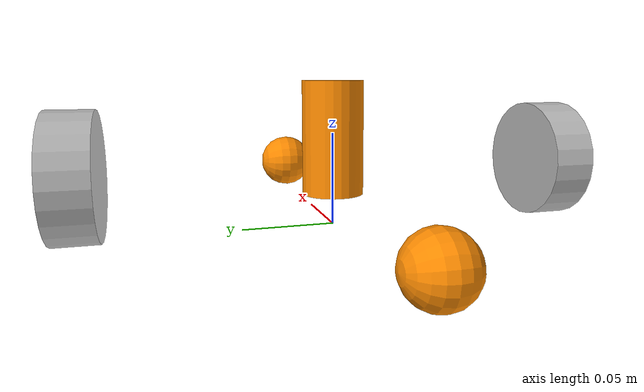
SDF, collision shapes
<?xml version='1.0'?>
<sdf version='1.6'>
  <model name='robot'>
    <link name='base'>
      <inertial>
        <pose frame=''>0.001453 -0.000453 0.029787 0 -0 0</pose>
        <inertia>
          <ixx>0.05864</ixx>
          <ixy>0.000124</ixy>
          <ixz>0.000615</ixz>
          <iyy>0.058786</iyy>
          <iyz>1.4e-05</iyz>
          <izz>1.53244</izz>
        </inertia>
        <mass>2.234</mass>
      </inertial>
      <sensor name='left_cliff_sensor' type='ray'>
        <pose frame=''>0.07 0.14 0.027 0 1.57079 0</pose>
        <ray>
          <scan>
            <horizontal>
              <samples>1</samples>
              <resolution>1</resolution>
              <min_angle>0</min_angle>
              <max_angle>0</max_angle>
            </horizontal>
            <vertical>
              <samples>1</samples>
              <min_angle>0</min_angle>
              <max_angle>0</max_angle>
            </vertical>
          </scan>
          <range>
            <min>0.01</min>
            <max>0.04</max>
            <resolution>0.1</resolution>
          </range>
        </ray>
      </sensor>
      <sensor name='leftfront_cliff_sensor' type='ray'>
        <pose frame=''>0.15 0.04 0.027 0 1.57079 0</pose>
        <ray>
          <scan>
            <horizontal>
              <samples>1</samples>
              <resolution>1</resolution>
              <min_angle>0</min_angle>
              <max_angle>0</max_angle>
            </horizontal>
            <vertical>
              <samples>1</samples>
              <min_angle>0</min_angle>
              <max_angle>0</max_angle>
            </vertical>
          </scan>
          <range>
            <min>0.01</min>
            <max>0.04</max>
            <resolution>0.1</resolution>
          </range>
        </ray>
      </sensor>
      <sensor name='right_cliff_sensor' type='ray'>
        <pose frame=''>0.07 -0.14 0.027 0 1.57079 0</pose>
        <ray>
          <scan>
            <horizontal>
              <samples>1</samples>
              <resolution>1</resolution>
              <min_angle>0</min_angle>
              <max_angle>0</max_angle>
            </horizontal>
            <vertical>
              <samples>1</samples>
              <min_angle>0</min_angle>
              <max_angle>0</max_angle>
            </vertical>
          </scan>
          <range>
            <min>0.01</min>
            <max>0.04</max>
            <resolution>0.1</resolution>
          </range>
        </ray>
      </sensor>
      <sensor name='rightfront_cliff_sensor' type='ray'>
        <pose frame=''>0.15 -0.04 0.027 0 1.57079 0</pose>
        <ray>
          <scan>
            <horizontal>
              <samples>1</samples>
              <resolution>1</resolution>
              <min_angle>0</min_angle>
              <max_angle>0</max_angle>
            </horizontal>
            <vertical>
              <samples>1</samples>
              <min_angle>0</min_angle>
              <max_angle>0</max_angle>
            </vertical>
          </scan>
          <range>
            <min>0.01</min>
            <max>0.04</max>
            <resolution>0.1</resolution>
          </range>
        </ray>
      </sensor>
      <sensor name='wall_sensor' type='ray'>
        <pose frame=''>0.09 -0.12 0.059 0 0 -1</pose>
        <ray>
          <scan>
            <horizontal>
              <samples>1</samples>
              <resolution>1</resolution>
              <min_angle>0</min_angle>
              <max_angle>0</max_angle>
            </horizontal>
            <vertical>
              <samples>1</samples>
              <min_angle>0</min_angle>
              <max_angle>0</max_angle>
            </vertical>
          </scan>
          <range>
            <min>0.016</min>
            <max>0.04</max>
            <resolution>0.1</resolution>
          </range>
        </ray>
      </sensor>
      <self_collide>0</self_collide>
      <enable_wind>0</enable_wind>
      <kinematic>0</kinematic>
      <pose frame=''>0 0 0 0 -0 0</pose>
      <visual name='base_visual'>
        <pose frame=''>0 0 0.0478 0 -0 0</pose>
        <geometry>
          <mesh>
            <uri>model://create/meshes/create_body.dae</uri>
          </mesh>
        </geometry>
        <material>
          <shader type='pixel'/>
          <ambient>1 0.55 0 1</ambient>
          <diffuse>1 0.55 0 1</diffuse>
          <specular>0.1 0.1 0.1 1</specular>
          <emissive>0 0 0 0</emissive>
        </material>
        <transparency>0</transparency>
        <cast_shadows>1</cast_shadows>
      </visual>
      <visual name='front_wheel_visual'>
        <pose frame=''>0.13 0 0.017 4.8e-05 1.5707 1.57075</pose>
        <geometry>
          <sphere>
            <radius>0.009</radius>
          </sphere>
        </geometry>
        <material>
          <shader type='pixel'/>
          <ambient>1 0.55 0 1</ambient>
          <diffuse>1 0.55 0 1</diffuse>
          <specular>0.1 0.1 0.1 1</specular>
          <emissive>0 0 0 0</emissive>
        </material>
        <transparency>0</transparency>
        <cast_shadows>1</cast_shadows>
      </visual>
      <visual name='rear_wheel_visual'>
        <pose frame=''>-0.13 0 0.017 4.8e-05 1.5707 1.57075</pose>
        <geometry>
          <sphere>
            <radius>0.0075</radius>
          </sphere>
        </geometry>
        <material>
          <shader type='pixel'/>
          <ambient>1 0.55 0 1</ambient>
          <diffuse>1 0.55 0 1</diffuse>
          <specular>0.1 0.1 0.1 1</specular>
          <emissive>0 0 0 0</emissive>
        </material>
        <transparency>0</transparency>
        <cast_shadows>1</cast_shadows>
      </visual>
      <collision name='base_collision'>
        <laser_retro>0</laser_retro>
        <max_contacts>10</max_contacts>
        <pose frame=''>0 0 0.0478 0 -0 0</pose>
        <geometry>
          <cylinder>
            <radius>0.016495</radius>
            <length>0.061163</length>
          </cylinder>
        </geometry>
        <surface>
          <friction>
            <ode>
              <mu>1</mu>
              <mu2>1</mu2>
              <fdir1>0 0 0</fdir1>
              <slip1>0</slip1>
              <slip2>0</slip2>
            </ode>
            <torsional>
              <coefficient>1</coefficient>
              <patch_radius>0</patch_radius>
              <surface_radius>0</surface_radius>
              <use_patch_radius>1</use_patch_radius>
              <ode>
                <slip>0</slip>
              </ode>
            </torsional>
          </friction>
          <bounce>
            <restitution_coefficient>0</restitution_coefficient>
            <threshold>1e+06</threshold>
          </bounce>
          <contact>
            <collide_without_contact>0</collide_without_contact>
            <collide_without_contact_bitmask>1</collide_without_contact_bitmask>
            <collide_bitmask>1</collide_bitmask>
            <ode>
              <soft_cfm>0</soft_cfm>
              <soft_erp>0.2</soft_erp>
              <kp>1e+13</kp>
              <kd>1</kd>
              <max_vel>0.01</max_vel>
              <min_depth>0</min_depth>
            </ode>
            <bullet>
              <split_impulse>1</split_impulse>
              <split_impulse_penetration_threshold>-0.01</split_impulse_penetration_threshold>
              <soft_cfm>0</soft_cfm>
              <soft_erp>0.2</soft_erp>
              <kp>1e+13</kp>
              <kd>1</kd>
            </bullet>
          </contact>
        </surface>
      </collision>
      <collision name='front_wheel_collision'>
        <laser_retro>0</laser_retro>
        <max_contacts>10</max_contacts>
        <pose frame=''>0.13 0 0.017 -0 1.5707 1.5707</pose>
        <geometry>
          <sphere>
            <radius>0.018</radius>
          </sphere>
        </geometry>
        <surface>
          <friction>
            <ode>
              <mu>0</mu>
              <mu2>0</mu2>
              <fdir1>0 0 0</fdir1>
              <slip1>0</slip1>
              <slip2>0</slip2>
            </ode>
            <torsional>
              <coefficient>1</coefficient>
              <patch_radius>0</patch_radius>
              <surface_radius>0</surface_radius>
              <use_patch_radius>1</use_patch_radius>
              <ode>
                <slip>0</slip>
              </ode>
            </torsional>
          </friction>
          <bounce>
            <restitution_coefficient>0</restitution_coefficient>
            <threshold>1e+06</threshold>
          </bounce>
          <contact>
            <collide_without_contact>0</collide_without_contact>
            <collide_without_contact_bitmask>1</collide_without_contact_bitmask>
            <collide_bitmask>1</collide_bitmask>
            <ode>
              <soft_cfm>0</soft_cfm>
              <soft_erp>0.2</soft_erp>
              <kp>1e+13</kp>
              <kd>1</kd>
              <max_vel>0.01</max_vel>
              <min_depth>0</min_depth>
            </ode>
            <bullet>
              <split_impulse>1</split_impulse>
              <split_impulse_penetration_threshold>-0.01</split_impulse_penetration_threshold>
              <soft_cfm>0</soft_cfm>
              <soft_erp>0.2</soft_erp>
              <kp>1e+13</kp>
              <kd>1</kd>
            </bullet>
          </contact>
        </surface>
      </collision>
      <collision name='rear_wheel_collision'>
        <laser_retro>0</laser_retro>
        <max_contacts>10</max_contacts>
        <pose frame=''>-0.13 0 0.017 -0 1.5707 1.5707</pose>
        <geometry>
          <sphere>
            <radius>0.015</radius>
          </sphere>
        </geometry>
        <surface>
          <friction>
            <ode>
              <mu>0</mu>
              <mu2>0</mu2>
              <fdir1>0 0 0</fdir1>
              <slip1>0</slip1>
              <slip2>0</slip2>
            </ode>
            <torsional>
              <coefficient>1</coefficient>
              <patch_radius>0</patch_radius>
              <surface_radius>0</surface_radius>
              <use_patch_radius>1</use_patch_radius>
              <ode>
                <slip>0</slip>
              </ode>
            </torsional>
          </friction>
          <bounce>
            <restitution_coefficient>0</restitution_coefficient>
            <threshold>1e+06</threshold>
          </bounce>
          <contact>
            <collide_without_contact>0</collide_without_contact>
            <collide_without_contact_bitmask>1</collide_without_contact_bitmask>
            <collide_bitmask>1</collide_bitmask>
            <ode>
              <soft_cfm>0</soft_cfm>
              <soft_erp>0.2</soft_erp>
              <kp>1e+13</kp>
              <kd>1</kd>
              <max_vel>0.01</max_vel>
              <min_depth>0</min_depth>
            </ode>
            <bullet>
              <split_impulse>1</split_impulse>
              <split_impulse_penetration_threshold>-0.01</split_impulse_penetration_threshold>
              <soft_cfm>0</soft_cfm>
              <soft_erp>0.2</soft_erp>
              <kp>1e+13</kp>
              <kd>1</kd>
            </bullet>
          </contact>
        </surface>
      </collision>
    </link>
    <link name='left_wheel'>
      <pose frame=''>-0 0.13 0.032 0 -0 0</pose>
      <inertial>
        <inertia>
          <ixx>0.001</ixx>
          <ixy>0</ixy>
          <ixz>0</ixz>
          <iyy>0.001</iyy>
          <iyz>0</iyz>
          <izz>0.001</izz>
        </inertia>
        <mass>0.01</mass>
        <pose frame=''>0 0 0 0 -0 0</pose>
      </inertial>
      <self_collide>0</self_collide>
      <enable_wind>0</enable_wind>
      <kinematic>0</kinematic>
      <visual name='visual'>
        <pose frame=''>0 0 0 4.8e-05 1.5707 1.57075</pose>
        <geometry>
          <cylinder>
            <radius>0.033</radius>
            <length>0.023</length>
          </cylinder>
        </geometry>
        <material>
          <shader type='pixel'/>
        </material>
        <transparency>0</transparency>
        <cast_shadows>1</cast_shadows>
      </visual>
      <collision name='collision'>
        <laser_retro>0</laser_retro>
        <max_contacts>10</max_contacts>
        <pose frame=''>0 0 0 -0 1.5707 1.5707</pose>
        <geometry>
          <cylinder>
            <radius>0.033</radius>
            <length>0.023</length>
          </cylinder>
        </geometry>
        <surface>
          <friction>
            <ode>
              <mu>10</mu>
              <mu2>10</mu2>
              <fdir1>0 0 0</fdir1>
              <slip1>0</slip1>
              <slip2>0</slip2>
            </ode>
            <torsional>
              <coefficient>1</coefficient>
              <patch_radius>0</patch_radius>
              <surface_radius>0</surface_radius>
              <use_patch_radius>1</use_patch_radius>
              <ode>
                <slip>0</slip>
              </ode>
            </torsional>
          </friction>
          <bounce>
            <restitution_coefficient>0</restitution_coefficient>
            <threshold>1e+06</threshold>
          </bounce>
          <contact>
            <collide_without_contact>0</collide_without_contact>
            <collide_without_contact_bitmask>1</collide_without_contact_bitmask>
            <collide_bitmask>1</collide_bitmask>
            <ode>
              <soft_cfm>0</soft_cfm>
              <soft_erp>0.2</soft_erp>
              <kp>1e+13</kp>
              <kd>1</kd>
              <max_vel>0.01</max_vel>
              <min_depth>0</min_depth>
            </ode>
            <bullet>
              <split_impulse>1</split_impulse>
              <split_impulse_penetration_threshold>-0.01</split_impulse_penetration_threshold>
              <soft_cfm>0</soft_cfm>
              <soft_erp>0.2</soft_erp>
              <kp>1e+13</kp>
              <kd>1</kd>
            </bullet>
          </contact>
        </surface>
      </collision>
    </link>
    <link name='right_wheel'>
      <pose frame=''>-0 -0.13 0.032 0 -0 0</pose>
      <inertial>
        <inertia>
          <ixx>0.001</ixx>
          <ixy>0</ixy>
          <ixz>0</ixz>
          <iyy>0.001</iyy>
          <iyz>0</iyz>
          <izz>0.001</izz>
        </inertia>
        <mass>0.01</mass>
        <pose frame=''>0 0 0 0 -0 0</pose>
      </inertial>
      <self_collide>0</self_collide>
      <enable_wind>0</enable_wind>
      <kinematic>0</kinematic>
      <visual name='visual'>
        <pose frame=''>0 0 0 4.8e-05 1.5707 1.57075</pose>
        <geometry>
          <cylinder>
            <radius>0.033</radius>
            <length>0.023</length>
          </cylinder>
        </geometry>
        <material>
          <shader type='pixel'/>
        </material>
        <transparency>0</transparency>
        <cast_shadows>1</cast_shadows>
      </visual>
      <collision name='collision'>
        <laser_retro>0</laser_retro>
        <max_contacts>10</max_contacts>
        <pose frame=''>0 0 0 -0 1.5707 1.5707</pose>
        <geometry>
          <cylinder>
            <radius>0.033</radius>
            <length>0.023</length>
          </cylinder>
        </geometry>
        <surface>
          <friction>
            <ode>
              <mu>10</mu>
              <mu2>10</mu2>
              <fdir1>0 0 0</fdir1>
              <slip1>0</slip1>
              <slip2>0</slip2>
            </ode>
            <torsional>
              <coefficient>1</coefficient>
              <patch_radius>0</patch_radius>
              <surface_radius>0</surface_radius>
              <use_patch_radius>1</use_patch_radius>
              <ode>
                <slip>0</slip>
              </ode>
            </torsional>
          </friction>
          <bounce>
            <restitution_coefficient>0</restitution_coefficient>
            <threshold>1e+06</threshold>
          </bounce>
          <contact>
            <collide_without_contact>0</collide_without_contact>
            <collide_without_contact_bitmask>1</collide_without_contact_bitmask>
            <collide_bitmask>1</collide_bitmask>
            <ode>
              <soft_cfm>0</soft_cfm>
              <soft_erp>0.2</soft_erp>
              <kp>1e+13</kp>
              <kd>1</kd>
              <max_vel>0.01</max_vel>
              <min_depth>0</min_depth>
            </ode>
            <bullet>
              <split_impulse>1</split_impulse>
              <split_impulse_penetration_threshold>-0.01</split_impulse_penetration_threshold>
              <soft_cfm>0</soft_cfm>
              <soft_erp>0.2</soft_erp>
              <kp>1e+13</kp>
              <kd>1</kd>
            </bullet>
          </contact>
        </surface>
      </collision>
    </link>
    <joint name='left_wheel' type='revolute'>
      <parent>base</parent>
      <child>left_wheel</child>
      <pose frame=''>0 0 0 0 -0 0</pose>
      <axis>
        <xyz>0 1 0</xyz>
        <use_parent_model_frame>1</use_parent_model_frame>
        <limit>
          <lower>-1e+16</lower>
          <upper>1e+16</upper>
          <effort>-1</effort>
          <velocity>-1</velocity>
        </limit>
        <dynamics>
          <spring_reference>0</spring_reference>
          <spring_stiffness>0</spring_stiffness>
          <damping>0</damping>
          <friction>0</friction>
        </dynamics>
      </axis>
      <physics>
        <ode>
          <limit>
            <cfm>0</cfm>
            <erp>0.2</erp>
          </limit>
          <suspension>
            <cfm>0</cfm>
            <erp>0.2</erp>
          </suspension>
        </ode>
      </physics>
    </joint>
    <joint name='right_wheel' type='revolute'>
      <parent>base</parent>
      <child>right_wheel</child>
      <pose frame=''>0 0 0 0 -0 0</pose>
      <axis>
        <xyz>0 1 0</xyz>
        <use_parent_model_frame>1</use_parent_model_frame>
        <limit>
          <lower>-1e+16</lower>
          <upper>1e+16</upper>
          <effort>-1</effort>
          <velocity>-1</velocity>
        </limit>
        <dynamics>
          <spring_reference>0</spring_reference>
          <spring_stiffness>0</spring_stiffness>
          <damping>0</damping>
          <friction>0</friction>
        </dynamics>
      </axis>
      <physics>
        <ode>
          <limit>
            <cfm>0</cfm>
            <erp>0.2</erp>
          </limit>
          <suspension>
            <cfm>0</cfm>
            <erp>0.2</erp>
          </suspension>
        </ode>
      </physics>
    </joint>
    <plugin name="differential_drive_controller" filename="libgazebo_ros_diff_drive.so">
      <alwaysOn>true</alwaysOn>
      <updateRate>1000</updateRate>
      <leftJoint>right_wheel</leftJoint>
      <rightJoint>left_wheel</rightJoint>
      <wheelSeparation>0.26</wheelSeparation>
      <wheelDiameter>0.066</wheelDiameter>
      <torque>20</torque>
      <commandTopic>/michelangelo/cmd_vel</commandTopic>
      <odometryTopic>odom</odometryTopic>
      <odometryFrame>odom</odometryFrame>
      <legacyMode> false</legacyMode>
      <robotBaseFrame>michelangelo</robotBaseFrame>
    </plugin>
    <static>0</static>
    <allow_auto_disable>1</allow_auto_disable>
  </model>
</sdf>
